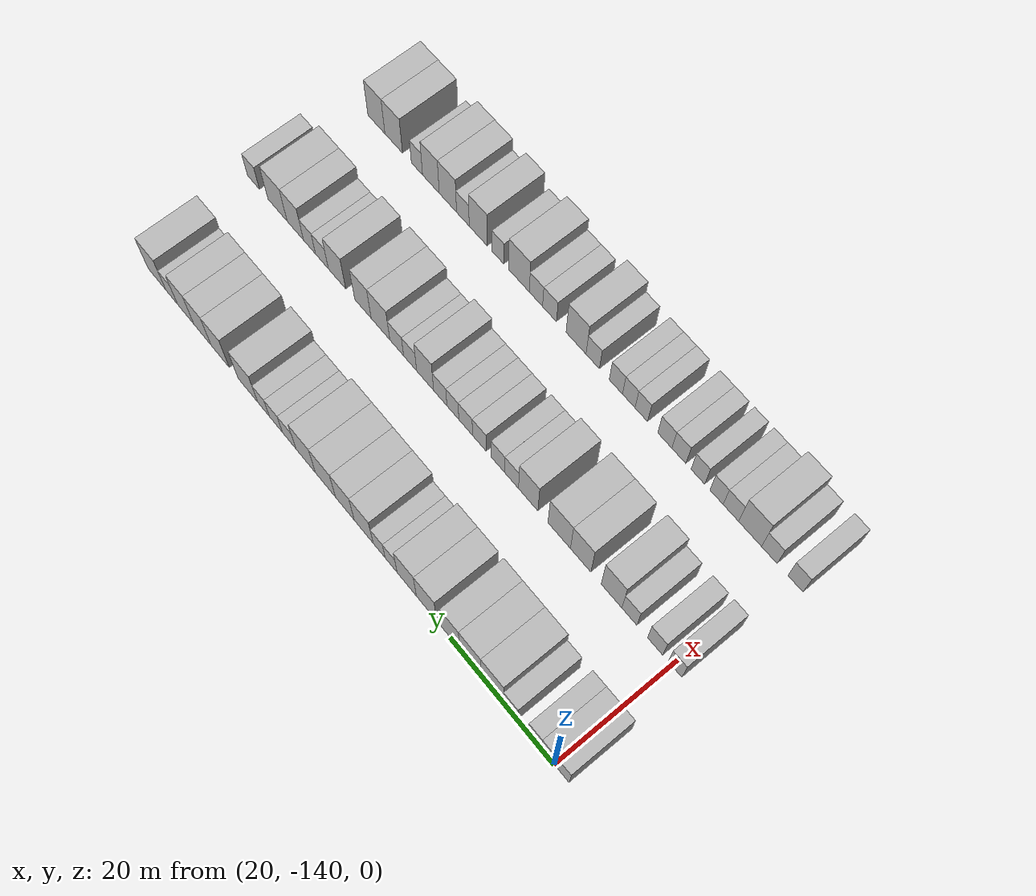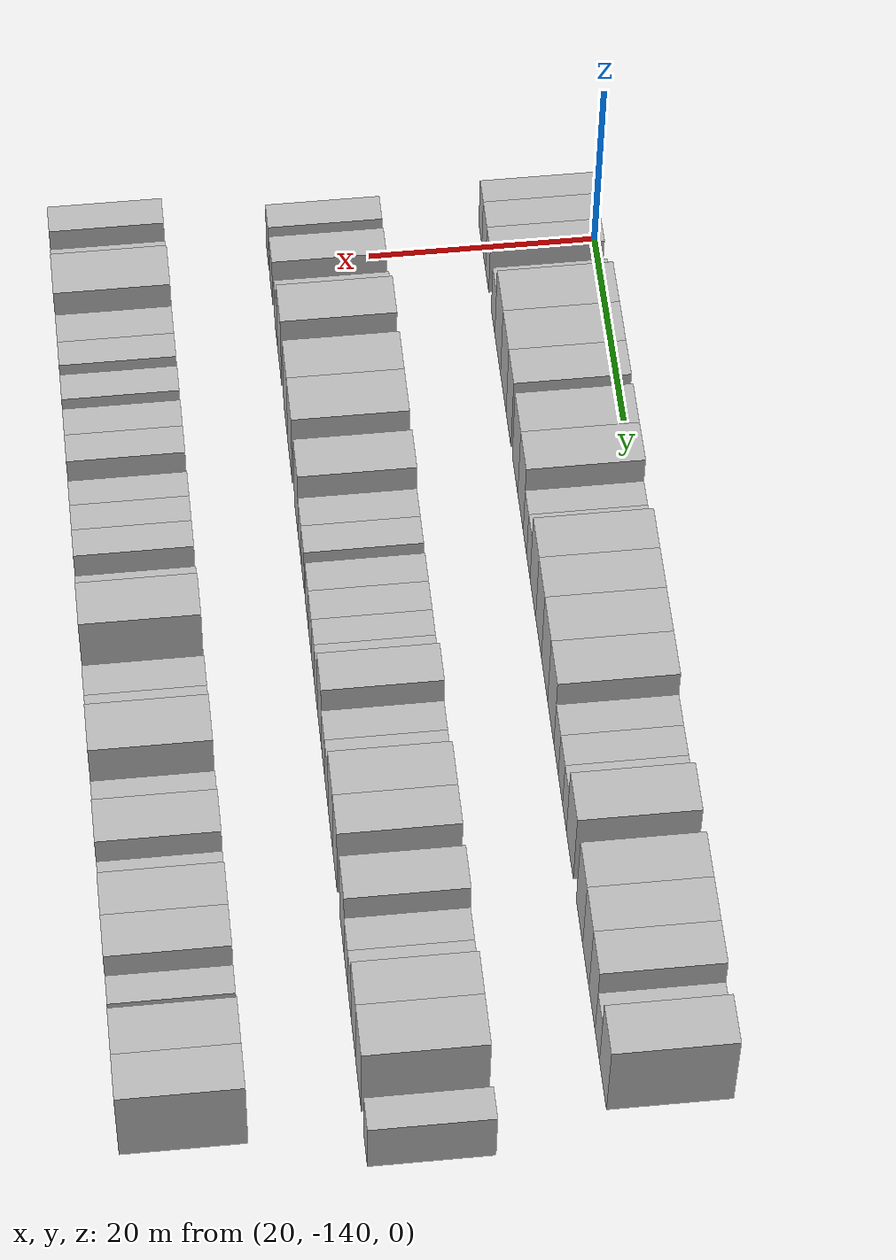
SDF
<sdf version="1.6">
 <world name="default">
  <model name="building_26">
   <static>1</static>
   <pose>25.0000 -141.5740 0 0.000000 0.000000 0.000000</pose>
   <link name="link">
    <pose>0 0 3.00 0 0 0</pose>
    <collision name="collision"><geometry><box><size>10.0000 2.4120 6.0000</size></box></geometry></collision>
    <visual name="visual">
     <cast_shadows>0</cast_shadows>
     <geometry><box><size>10.0000 2.4120 6.0000</size></box></geometry>
     <material>
      <script>
       <uri>model://HANNAS_wall/materials/scripts</uri>
       <uri>model://HANNAS_wall/materials/textures</uri>
       <name>vrc/HANNAS_wall</name>
      </script>
     </material>
    </visual>
   </link>
  </model>
  <model name="building_27">
   <static>1</static>
   <pose>25.0000 -138.9465 0 0.000000 0.000000 0.000000</pose>
   <link name="link">
    <pose>0 0 3.00 0 0 0</pose>
    <collision name="collision"><geometry><box><size>10.0000 2.8429 6.0000</size></box></geometry></collision>
    <visual name="visual">
     <cast_shadows>0</cast_shadows>
     <geometry><box><size>10.0000 2.8429 6.0000</size></box></geometry>
     <material>
      <script>
       <uri>model://HANNAS_wall/materials/scripts</uri>
       <uri>model://HANNAS_wall/materials/textures</uri>
       <name>vrc/HANNAS_wall</name>
      </script>
     </material>
    </visual>
   </link>
  </model>
  <model name="building_28">
   <static>1</static>
   <pose>25.0000 -136.2739 0 0.000000 0.000000 0.000000</pose>
   <link name="link">
    <pose>0 0 3.00 0 0 0</pose>
    <collision name="collision"><geometry><box><size>10.0000 2.5021 6.0000</size></box></geometry></collision>
    <visual name="visual">
     <cast_shadows>0</cast_shadows>
     <geometry><box><size>10.0000 2.5021 6.0000</size></box></geometry>
     <material>
      <script>
       <uri>model://HANNAS_wall/materials/scripts</uri>
       <uri>model://HANNAS_wall/materials/textures</uri>
       <name>vrc/HANNAS_wall</name>
      </script>
     </material>
    </visual>
   </link>
  </model>
  <model name="building_29">
   <static>1</static>
   <pose>25.0000 -131.6614 0 0.000000 0.000000 0.000000</pose>
   <link name="link">
    <pose>0 0 3.00 0 0 0</pose>
    <collision name="collision"><geometry><box><size>10.0000 2.7230 6.0000</size></box></geometry></collision>
    <visual name="visual">
     <cast_shadows>0</cast_shadows>
     <geometry><box><size>10.0000 2.7230 6.0000</size></box></geometry>
     <material>
      <script>
       <uri>model://HANNAS_wall/materials/scripts</uri>
       <uri>model://HANNAS_wall/materials/textures</uri>
       <name>vrc/HANNAS_wall</name>
      </script>
     </material>
    </visual>
   </link>
  </model>
  <model name="building_30">
   <static>1</static>
   <pose>25.0000 -128.1319 0 0.000000 0.000000 0.000000</pose>
   <link name="link">
    <pose>0 0 4.50 0 0 0</pose>
    <collision name="collision"><geometry><box><size>10.0000 4.3360 9.0000</size></box></geometry></collision>
    <visual name="visual">
     <cast_shadows>0</cast_shadows>
     <geometry><box><size>10.0000 4.3360 9.0000</size></box></geometry>
     <material>
      <script>
       <uri>model://HANNAS_wall/materials/scripts</uri>
       <uri>model://HANNAS_wall/materials/textures</uri>
       <name>vrc/HANNAS_wall</name>
      </script>
     </material>
    </visual>
   </link>
  </model>
  <model name="building_31">
   <static>1</static>
   <pose>25.0000 -123.8692 0 0.000000 0.000000 0.000000</pose>
   <link name="link">
    <pose>0 0 4.50 0 0 0</pose>
    <collision name="collision"><geometry><box><size>10.0000 4.1894 9.0000</size></box></geometry></collision>
    <visual name="visual">
     <cast_shadows>0</cast_shadows>
     <geometry><box><size>10.0000 4.1894 9.0000</size></box></geometry>
     <material>
      <script>
       <uri>model://HANNAS_wall/materials/scripts</uri>
       <uri>model://HANNAS_wall/materials/textures</uri>
       <name>vrc/HANNAS_wall</name>
      </script>
     </material>
    </visual>
   </link>
  </model>
  <model name="building_32">
   <static>1</static>
   <pose>25.0000 -119.9717 0 0.000000 0.000000 0.000000</pose>
   <link name="link">
    <pose>0 0 4.50 0 0 0</pose>
    <collision name="collision"><geometry><box><size>10.0000 3.6055 9.0000</size></box></geometry></collision>
    <visual name="visual">
     <cast_shadows>0</cast_shadows>
     <geometry><box><size>10.0000 3.6055 9.0000</size></box></geometry>
     <material>
      <script>
       <uri>model://HANNAS_wall/materials/scripts</uri>
       <uri>model://HANNAS_wall/materials/textures</uri>
       <name>vrc/HANNAS_wall</name>
      </script>
     </material>
    </visual>
   </link>
  </model>
  <model name="building_33">
   <static>1</static>
   <pose>25.0000 -115.1408 0 0.000000 0.000000 0.000000</pose>
   <link name="link">
    <pose>0 0 4.50 0 0 0</pose>
    <collision name="collision"><geometry><box><size>10.0000 4.0563 9.0000</size></box></geometry></collision>
    <visual name="visual">
     <cast_shadows>0</cast_shadows>
     <geometry><box><size>10.0000 4.0563 9.0000</size></box></geometry>
     <material>
      <script>
       <uri>model://HANNAS_wall/materials/scripts</uri>
       <uri>model://HANNAS_wall/materials/textures</uri>
       <name>vrc/HANNAS_wall</name>
      </script>
     </material>
    </visual>
   </link>
  </model>
  <model name="building_34">
   <static>1</static>
   <pose>25.0000 -111.1543 0 0.000000 0.000000 0.000000</pose>
   <link name="link">
    <pose>0 0 4.50 0 0 0</pose>
    <collision name="collision"><geometry><box><size>10.0000 3.9168 9.0000</size></box></geometry></collision>
    <visual name="visual">
     <cast_shadows>0</cast_shadows>
     <geometry><box><size>10.0000 3.9168 9.0000</size></box></geometry>
     <material>
      <script>
       <uri>model://HANNAS_wall/materials/scripts</uri>
       <uri>model://HANNAS_wall/materials/textures</uri>
       <name>vrc/HANNAS_wall</name>
      </script>
     </material>
    </visual>
   </link>
  </model>
  <model name="building_35">
   <static>1</static>
   <pose>25.0000 -107.9606 0 0.000000 0.000000 0.000000</pose>
   <link name="link">
    <pose>0 0 3.00 0 0 0</pose>
    <collision name="collision"><geometry><box><size>10.0000 2.4706 6.0000</size></box></geometry></collision>
    <visual name="visual">
     <cast_shadows>0</cast_shadows>
     <geometry><box><size>10.0000 2.4706 6.0000</size></box></geometry>
     <material>
      <script>
       <uri>model://HANNAS_wall/materials/scripts</uri>
       <uri>model://HANNAS_wall/materials/textures</uri>
       <name>vrc/HANNAS_wall</name>
      </script>
     </material>
    </visual>
   </link>
  </model>
  <model name="building_36">
   <static>1</static>
   <pose>25.0000 -105.4931 0 0.000000 0.000000 0.000000</pose>
   <link name="link">
    <pose>0 0 3.00 0 0 0</pose>
    <collision name="collision"><geometry><box><size>10.0000 2.4644 6.0000</size></box></geometry></collision>
    <visual name="visual">
     <cast_shadows>0</cast_shadows>
     <geometry><box><size>10.0000 2.4644 6.0000</size></box></geometry>
     <material>
      <script>
       <uri>model://HANNAS_wall/materials/scripts</uri>
       <uri>model://HANNAS_wall/materials/textures</uri>
       <name>vrc/HANNAS_wall</name>
      </script>
     </material>
    </visual>
   </link>
  </model>
  <model name="building_37">
   <static>1</static>
   <pose>25.0000 -102.2749 0 0.000000 0.000000 0.000000</pose>
   <link name="link">
    <pose>0 0 4.50 0 0 0</pose>
    <collision name="collision"><geometry><box><size>10.0000 3.9720 9.0000</size></box></geometry></collision>
    <visual name="visual">
     <cast_shadows>0</cast_shadows>
     <geometry><box><size>10.0000 3.9720 9.0000</size></box></geometry>
     <material>
      <script>
       <uri>model://HANNAS_wall/materials/scripts</uri>
       <uri>model://HANNAS_wall/materials/textures</uri>
       <name>vrc/HANNAS_wall</name>
      </script>
     </material>
    </visual>
   </link>
  </model>
  <model name="building_38">
   <static>1</static>
   <pose>25.0000 -98.3123 0 0.000000 0.000000 0.000000</pose>
   <link name="link">
    <pose>0 0 4.50 0 0 0</pose>
    <collision name="collision"><geometry><box><size>10.0000 3.9532 9.0000</size></box></geometry></collision>
    <visual name="visual">
     <cast_shadows>0</cast_shadows>
     <geometry><box><size>10.0000 3.9532 9.0000</size></box></geometry>
     <material>
      <script>
       <uri>model://HANNAS_wall/materials/scripts</uri>
       <uri>model://HANNAS_wall/materials/textures</uri>
       <name>vrc/HANNAS_wall</name>
      </script>
     </material>
    </visual>
   </link>
  </model>
  <model name="building_39">
   <static>1</static>
   <pose>25.0000 -94.1757 0 0.000000 0.000000 0.000000</pose>
   <link name="link">
    <pose>0 0 4.50 0 0 0</pose>
    <collision name="collision"><geometry><box><size>10.0000 4.3201 9.0000</size></box></geometry></collision>
    <visual name="visual">
     <cast_shadows>0</cast_shadows>
     <geometry><box><size>10.0000 4.3201 9.0000</size></box></geometry>
     <material>
      <script>
       <uri>model://HANNAS_wall/materials/scripts</uri>
       <uri>model://HANNAS_wall/materials/textures</uri>
       <name>vrc/HANNAS_wall</name>
      </script>
     </material>
    </visual>
   </link>
  </model>
  <model name="building_40">
   <static>1</static>
   <pose>25.0000 -89.9072 0 0.000000 0.000000 0.000000</pose>
   <link name="link">
    <pose>0 0 4.50 0 0 0</pose>
    <collision name="collision"><geometry><box><size>10.0000 4.2168 9.0000</size></box></geometry></collision>
    <visual name="visual">
     <cast_shadows>0</cast_shadows>
     <geometry><box><size>10.0000 4.2168 9.0000</size></box></geometry>
     <material>
      <script>
       <uri>model://HANNAS_wall/materials/scripts</uri>
       <uri>model://HANNAS_wall/materials/textures</uri>
       <name>vrc/HANNAS_wall</name>
      </script>
     </material>
    </visual>
   </link>
  </model>
  <model name="building_41">
   <static>1</static>
   <pose>25.0000 -86.3174 0 0.000000 0.000000 0.000000</pose>
   <link name="link">
    <pose>0 0 3.00 0 0 0</pose>
    <collision name="collision"><geometry><box><size>10.0000 2.9628 6.0000</size></box></geometry></collision>
    <visual name="visual">
     <cast_shadows>0</cast_shadows>
     <geometry><box><size>10.0000 2.9628 6.0000</size></box></geometry>
     <material>
      <script>
       <uri>model://HANNAS_wall/materials/scripts</uri>
       <uri>model://HANNAS_wall/materials/textures</uri>
       <name>vrc/HANNAS_wall</name>
      </script>
     </material>
    </visual>
   </link>
  </model>
  <model name="building_42">
   <static>1</static>
   <pose>25.0000 -83.4002 0 0.000000 0.000000 0.000000</pose>
   <link name="link">
    <pose>0 0 3.00 0 0 0</pose>
    <collision name="collision"><geometry><box><size>10.0000 2.8717 6.0000</size></box></geometry></collision>
    <visual name="visual">
     <cast_shadows>0</cast_shadows>
     <geometry><box><size>10.0000 2.8717 6.0000</size></box></geometry>
     <material>
      <script>
       <uri>model://HANNAS_wall/materials/scripts</uri>
       <uri>model://HANNAS_wall/materials/textures</uri>
       <name>vrc/HANNAS_wall</name>
      </script>
     </material>
    </visual>
   </link>
  </model>
  <model name="building_43">
   <static>1</static>
   <pose>25.0000 -80.6808 0 0.000000 0.000000 0.000000</pose>
   <link name="link">
    <pose>0 0 3.00 0 0 0</pose>
    <collision name="collision"><geometry><box><size>10.0000 2.5671 6.0000</size></box></geometry></collision>
    <visual name="visual">
     <cast_shadows>0</cast_shadows>
     <geometry><box><size>10.0000 2.5671 6.0000</size></box></geometry>
     <material>
      <script>
       <uri>model://HANNAS_wall/materials/scripts</uri>
       <uri>model://HANNAS_wall/materials/textures</uri>
       <name>vrc/HANNAS_wall</name>
      </script>
     </material>
    </visual>
   </link>
  </model>
  <model name="building_44">
   <static>1</static>
   <pose>25.0000 -77.1678 0 0.000000 0.000000 0.000000</pose>
   <link name="link">
    <pose>0 0 4.50 0 0 0</pose>
    <collision name="collision"><geometry><box><size>10.0000 4.4588 9.0000</size></box></geometry></collision>
    <visual name="visual">
     <cast_shadows>0</cast_shadows>
     <geometry><box><size>10.0000 4.4588 9.0000</size></box></geometry>
     <material>
      <script>
       <uri>model://HANNAS_wall/materials/scripts</uri>
       <uri>model://HANNAS_wall/materials/textures</uri>
       <name>vrc/HANNAS_wall</name>
      </script>
     </material>
    </visual>
   </link>
  </model>
  <model name="building_45">
   <static>1</static>
   <pose>25.0000 -70.8809 0 0.000000 0.000000 0.000000</pose>
   <link name="link">
    <pose>0 0 4.50 0 0 0</pose>
    <collision name="collision"><geometry><box><size>10.0000 4.1150 9.0000</size></box></geometry></collision>
    <visual name="visual">
     <cast_shadows>0</cast_shadows>
     <geometry><box><size>10.0000 4.1150 9.0000</size></box></geometry>
     <material>
      <script>
       <uri>model://HANNAS_wall/materials/scripts</uri>
       <uri>model://HANNAS_wall/materials/textures</uri>
       <name>vrc/HANNAS_wall</name>
      </script>
     </material>
    </visual>
   </link>
  </model>
  <model name="building_46">
   <static>1</static>
   <pose>25.0000 -66.8334 0 0.000000 0.000000 0.000000</pose>
   <link name="link">
    <pose>0 0 4.50 0 0 0</pose>
    <collision name="collision"><geometry><box><size>10.0000 3.9800 9.0000</size></box></geometry></collision>
    <visual name="visual">
     <cast_shadows>0</cast_shadows>
     <geometry><box><size>10.0000 3.9800 9.0000</size></box></geometry>
     <material>
      <script>
       <uri>model://HANNAS_wall/materials/scripts</uri>
       <uri>model://HANNAS_wall/materials/textures</uri>
       <name>vrc/HANNAS_wall</name>
      </script>
     </material>
    </visual>
   </link>
  </model>
  <model name="building_47">
   <static>1</static>
   <pose>25.0000 -62.9381 0 0.000000 0.000000 0.000000</pose>
   <link name="link">
    <pose>0 0 4.50 0 0 0</pose>
    <collision name="collision"><geometry><box><size>10.0000 3.8106 9.0000</size></box></geometry></collision>
    <visual name="visual">
     <cast_shadows>0</cast_shadows>
     <geometry><box><size>10.0000 3.8106 9.0000</size></box></geometry>
     <material>
      <script>
       <uri>model://HANNAS_wall/materials/scripts</uri>
       <uri>model://HANNAS_wall/materials/textures</uri>
       <name>vrc/HANNAS_wall</name>
      </script>
     </material>
    </visual>
   </link>
  </model>
  <model name="building_48">
   <static>1</static>
   <pose>25.0000 -59.6556 0 0.000000 0.000000 0.000000</pose>
   <link name="link">
    <pose>0 0 3.00 0 0 0</pose>
    <collision name="collision"><geometry><box><size>10.0000 2.7545 6.0000</size></box></geometry></collision>
    <visual name="visual">
     <cast_shadows>0</cast_shadows>
     <geometry><box><size>10.0000 2.7545 6.0000</size></box></geometry>
     <material>
      <script>
       <uri>model://HANNAS_wall/materials/scripts</uri>
       <uri>model://HANNAS_wall/materials/textures</uri>
       <name>vrc/HANNAS_wall</name>
      </script>
     </material>
    </visual>
   </link>
  </model>
  <model name="building_49">
   <static>1</static>
   <pose>25.0000 -56.1381 0 0.000000 0.000000 0.000000</pose>
   <link name="link">
    <pose>0 0 4.50 0 0 0</pose>
    <collision name="collision"><geometry><box><size>10.0000 4.2806 9.0000</size></box></geometry></collision>
    <visual name="visual">
     <cast_shadows>0</cast_shadows>
     <geometry><box><size>10.0000 4.2806 9.0000</size></box></geometry>
     <material>
      <script>
       <uri>model://HANNAS_wall/materials/scripts</uri>
       <uri>model://HANNAS_wall/materials/textures</uri>
       <name>vrc/HANNAS_wall</name>
      </script>
     </material>
    </visual>
   </link>
  </model>
  <model name="building_141">
   <static>1</static>
   <pose>44.0000 -140.6264 0 0.000000 0.000000 0.000000</pose>
   <link name="link">
    <pose>0 0 3.00 0 0 0</pose>
    <collision name="collision"><geometry><box><size>10.0000 2.5662 6.0000</size></box></geometry></collision>
    <visual name="visual">
     <cast_shadows>0</cast_shadows>
     <geometry><box><size>10.0000 2.5662 6.0000</size></box></geometry>
     <material>
      <script>
       <uri>model://HANNAS_wall/materials/scripts</uri>
       <uri>model://HANNAS_wall/materials/textures</uri>
       <name>vrc/HANNAS_wall</name>
      </script>
     </material>
    </visual>
   </link>
  </model>
  <model name="building_142">
   <static>1</static>
   <pose>44.0000 -136.9152 0 0.000000 0.000000 0.000000</pose>
   <link name="link">
    <pose>0 0 3.00 0 0 0</pose>
    <collision name="collision"><geometry><box><size>10.0000 2.8561 6.0000</size></box></geometry></collision>
    <visual name="visual">
     <cast_shadows>0</cast_shadows>
     <geometry><box><size>10.0000 2.8561 6.0000</size></box></geometry>
     <material>
      <script>
       <uri>model://HANNAS_wall/materials/scripts</uri>
       <uri>model://HANNAS_wall/materials/textures</uri>
       <name>vrc/HANNAS_wall</name>
      </script>
     </material>
    </visual>
   </link>
  </model>
  <model name="building_143">
   <static>1</static>
   <pose>44.0000 -132.0549 0 0.000000 0.000000 0.000000</pose>
   <link name="link">
    <pose>0 0 3.00 0 0 0</pose>
    <collision name="collision"><geometry><box><size>10.0000 2.8644 6.0000</size></box></geometry></collision>
    <visual name="visual">
     <cast_shadows>0</cast_shadows>
     <geometry><box><size>10.0000 2.8644 6.0000</size></box></geometry>
     <material>
      <script>
       <uri>model://HANNAS_wall/materials/scripts</uri>
       <uri>model://HANNAS_wall/materials/textures</uri>
       <name>vrc/HANNAS_wall</name>
      </script>
     </material>
    </visual>
   </link>
  </model>
  <model name="building_144">
   <static>1</static>
   <pose>44.0000 -128.6336 0 0.000000 0.000000 0.000000</pose>
   <link name="link">
    <pose>0 0 4.50 0 0 0</pose>
    <collision name="collision"><geometry><box><size>10.0000 3.9784 9.0000</size></box></geometry></collision>
    <visual name="visual">
     <cast_shadows>0</cast_shadows>
     <geometry><box><size>10.0000 3.9784 9.0000</size></box></geometry>
     <material>
      <script>
       <uri>model://HANNAS_wall/materials/scripts</uri>
       <uri>model://HANNAS_wall/materials/textures</uri>
       <name>vrc/HANNAS_wall</name>
      </script>
     </material>
    </visual>
   </link>
  </model>
  <model name="building_145">
   <static>1</static>
   <pose>44.0000 -122.6412 0 0.000000 0.000000 0.000000</pose>
   <link name="link">
    <pose>0 0 4.50 0 0 0</pose>
    <collision name="collision"><geometry><box><size>10.0000 4.0063 9.0000</size></box></geometry></collision>
    <visual name="visual">
     <cast_shadows>0</cast_shadows>
     <geometry><box><size>10.0000 4.0063 9.0000</size></box></geometry>
     <material>
      <script>
       <uri>model://HANNAS_wall/materials/scripts</uri>
       <uri>model://HANNAS_wall/materials/textures</uri>
       <name>vrc/HANNAS_wall</name>
      </script>
     </material>
    </visual>
   </link>
  </model>
  <model name="building_146">
   <static>1</static>
   <pose>44.0000 -118.4193 0 0.000000 0.000000 0.000000</pose>
   <link name="link">
    <pose>0 0 4.50 0 0 0</pose>
    <collision name="collision"><geometry><box><size>10.0000 4.4376 9.0000</size></box></geometry></collision>
    <visual name="visual">
     <cast_shadows>0</cast_shadows>
     <geometry><box><size>10.0000 4.4376 9.0000</size></box></geometry>
     <material>
      <script>
       <uri>model://HANNAS_wall/materials/scripts</uri>
       <uri>model://HANNAS_wall/materials/textures</uri>
       <name>vrc/HANNAS_wall</name>
      </script>
     </material>
    </visual>
   </link>
  </model>
  <model name="building_147">
   <static>1</static>
   <pose>44.0000 -112.2503 0 0.000000 0.000000 0.000000</pose>
   <link name="link">
    <pose>0 0 4.50 0 0 0</pose>
    <collision name="collision"><geometry><box><size>10.0000 3.9004 9.0000</size></box></geometry></collision>
    <visual name="visual">
     <cast_shadows>0</cast_shadows>
     <geometry><box><size>10.0000 3.9004 9.0000</size></box></geometry>
     <material>
      <script>
       <uri>model://HANNAS_wall/materials/scripts</uri>
       <uri>model://HANNAS_wall/materials/textures</uri>
       <name>vrc/HANNAS_wall</name>
      </script>
     </material>
    </visual>
   </link>
  </model>
  <model name="building_148">
   <static>1</static>
   <pose>44.0000 -108.8721 0 0.000000 0.000000 0.000000</pose>
   <link name="link">
    <pose>0 0 3.00 0 0 0</pose>
    <collision name="collision"><geometry><box><size>10.0000 2.8560 6.0000</size></box></geometry></collision>
    <visual name="visual">
     <cast_shadows>0</cast_shadows>
     <geometry><box><size>10.0000 2.8560 6.0000</size></box></geometry>
     <material>
      <script>
       <uri>model://HANNAS_wall/materials/scripts</uri>
       <uri>model://HANNAS_wall/materials/textures</uri>
       <name>vrc/HANNAS_wall</name>
      </script>
     </material>
    </visual>
   </link>
  </model>
  <model name="building_149">
   <static>1</static>
   <pose>44.0000 -106.0738 0 0.000000 0.000000 0.000000</pose>
   <link name="link">
    <pose>0 0 3.00 0 0 0</pose>
    <collision name="collision"><geometry><box><size>10.0000 2.7405 6.0000</size></box></geometry></collision>
    <visual name="visual">
     <cast_shadows>0</cast_shadows>
     <geometry><box><size>10.0000 2.7405 6.0000</size></box></geometry>
     <material>
      <script>
       <uri>model://HANNAS_wall/materials/scripts</uri>
       <uri>model://HANNAS_wall/materials/textures</uri>
       <name>vrc/HANNAS_wall</name>
      </script>
     </material>
    </visual>
   </link>
  </model>
  <model name="building_150">
   <static>1</static>
   <pose>44.0000 -102.2905 0 0.000000 0.000000 0.000000</pose>
   <link name="link">
    <pose>0 0 3.00 0 0 0</pose>
    <collision name="collision"><geometry><box><size>10.0000 2.8261 6.0000</size></box></geometry></collision>
    <visual name="visual">
     <cast_shadows>0</cast_shadows>
     <geometry><box><size>10.0000 2.8261 6.0000</size></box></geometry>
     <material>
      <script>
       <uri>model://HANNAS_wall/materials/scripts</uri>
       <uri>model://HANNAS_wall/materials/textures</uri>
       <name>vrc/HANNAS_wall</name>
      </script>
     </material>
    </visual>
   </link>
  </model>
  <model name="building_151">
   <static>1</static>
   <pose>44.0000 -99.4520 0 0.000000 0.000000 0.000000</pose>
   <link name="link">
    <pose>0 0 3.00 0 0 0</pose>
    <collision name="collision"><geometry><box><size>10.0000 2.8510 6.0000</size></box></geometry></collision>
    <visual name="visual">
     <cast_shadows>0</cast_shadows>
     <geometry><box><size>10.0000 2.8510 6.0000</size></box></geometry>
     <material>
      <script>
       <uri>model://HANNAS_wall/materials/scripts</uri>
       <uri>model://HANNAS_wall/materials/textures</uri>
       <name>vrc/HANNAS_wall</name>
      </script>
     </material>
    </visual>
   </link>
  </model>
  <model name="building_152">
   <static>1</static>
   <pose>44.0000 -96.7731 0 0.000000 0.000000 0.000000</pose>
   <link name="link">
    <pose>0 0 3.00 0 0 0</pose>
    <collision name="collision"><geometry><box><size>10.0000 2.5068 6.0000</size></box></geometry></collision>
    <visual name="visual">
     <cast_shadows>0</cast_shadows>
     <geometry><box><size>10.0000 2.5068 6.0000</size></box></geometry>
     <material>
      <script>
       <uri>model://HANNAS_wall/materials/scripts</uri>
       <uri>model://HANNAS_wall/materials/textures</uri>
       <name>vrc/HANNAS_wall</name>
      </script>
     </material>
    </visual>
   </link>
  </model>
  <model name="building_153">
   <static>1</static>
   <pose>44.0000 -94.1141 0 0.000000 0.000000 0.000000</pose>
   <link name="link">
    <pose>0 0 3.00 0 0 0</pose>
    <collision name="collision"><geometry><box><size>10.0000 2.8112 6.0000</size></box></geometry></collision>
    <visual name="visual">
     <cast_shadows>0</cast_shadows>
     <geometry><box><size>10.0000 2.8112 6.0000</size></box></geometry>
     <material>
      <script>
       <uri>model://HANNAS_wall/materials/scripts</uri>
       <uri>model://HANNAS_wall/materials/textures</uri>
       <name>vrc/HANNAS_wall</name>
      </script>
     </material>
    </visual>
   </link>
  </model>
  <model name="building_154">
   <static>1</static>
   <pose>44.0000 -90.8967 0 0.000000 0.000000 0.000000</pose>
   <link name="link">
    <pose>0 0 4.50 0 0 0</pose>
    <collision name="collision"><geometry><box><size>10.0000 3.6237 9.0000</size></box></geometry></collision>
    <visual name="visual">
     <cast_shadows>0</cast_shadows>
     <geometry><box><size>10.0000 3.6237 9.0000</size></box></geometry>
     <material>
      <script>
       <uri>model://HANNAS_wall/materials/scripts</uri>
       <uri>model://HANNAS_wall/materials/textures</uri>
       <name>vrc/HANNAS_wall</name>
      </script>
     </material>
    </visual>
   </link>
  </model>
  <model name="building_155">
   <static>1</static>
   <pose>44.0000 -87.6792 0 0.000000 0.000000 0.000000</pose>
   <link name="link">
    <pose>0 0 3.00 0 0 0</pose>
    <collision name="collision"><geometry><box><size>10.0000 2.8112 6.0000</size></box></geometry></collision>
    <visual name="visual">
     <cast_shadows>0</cast_shadows>
     <geometry><box><size>10.0000 2.8112 6.0000</size></box></geometry>
     <material>
      <script>
       <uri>model://HANNAS_wall/materials/scripts</uri>
       <uri>model://HANNAS_wall/materials/textures</uri>
       <name>vrc/HANNAS_wall</name>
      </script>
     </material>
    </visual>
   </link>
  </model>
  <model name="building_156">
   <static>1</static>
   <pose>44.0000 -84.7810 0 0.000000 0.000000 0.000000</pose>
   <link name="link">
    <pose>0 0 3.00 0 0 0</pose>
    <collision name="collision"><geometry><box><size>10.0000 2.9853 6.0000</size></box></geometry></collision>
    <visual name="visual">
     <cast_shadows>0</cast_shadows>
     <geometry><box><size>10.0000 2.9853 6.0000</size></box></geometry>
     <material>
      <script>
       <uri>model://HANNAS_wall/materials/scripts</uri>
       <uri>model://HANNAS_wall/materials/textures</uri>
       <name>vrc/HANNAS_wall</name>
      </script>
     </material>
    </visual>
   </link>
  </model>
  <model name="building_157">
   <static>1</static>
   <pose>44.0000 -81.2486 0 0.000000 0.000000 0.000000</pose>
   <link name="link">
    <pose>0 0 4.50 0 0 0</pose>
    <collision name="collision"><geometry><box><size>10.0000 4.0795 9.0000</size></box></geometry></collision>
    <visual name="visual">
     <cast_shadows>0</cast_shadows>
     <geometry><box><size>10.0000 4.0795 9.0000</size></box></geometry>
     <material>
      <script>
       <uri>model://HANNAS_wall/materials/scripts</uri>
       <uri>model://HANNAS_wall/materials/textures</uri>
       <name>vrc/HANNAS_wall</name>
      </script>
     </material>
    </visual>
   </link>
  </model>
  <model name="building_158">
   <static>1</static>
   <pose>44.0000 -77.3841 0 0.000000 0.000000 0.000000</pose>
   <link name="link">
    <pose>0 0 4.50 0 0 0</pose>
    <collision name="collision"><geometry><box><size>10.0000 3.6496 9.0000</size></box></geometry></collision>
    <visual name="visual">
     <cast_shadows>0</cast_shadows>
     <geometry><box><size>10.0000 3.6496 9.0000</size></box></geometry>
     <material>
      <script>
       <uri>model://HANNAS_wall/materials/scripts</uri>
       <uri>model://HANNAS_wall/materials/textures</uri>
       <name>vrc/HANNAS_wall</name>
      </script>
     </material>
    </visual>
   </link>
  </model>
  <model name="building_159">
   <static>1</static>
   <pose>44.0000 -71.6045 0 0.000000 0.000000 0.000000</pose>
   <link name="link">
    <pose>0 0 4.50 0 0 0</pose>
    <collision name="collision"><geometry><box><size>10.0000 3.9097 9.0000</size></box></geometry></collision>
    <visual name="visual">
     <cast_shadows>0</cast_shadows>
     <geometry><box><size>10.0000 3.9097 9.0000</size></box></geometry>
     <material>
      <script>
       <uri>model://HANNAS_wall/materials/scripts</uri>
       <uri>model://HANNAS_wall/materials/textures</uri>
       <name>vrc/HANNAS_wall</name>
      </script>
     </material>
    </visual>
   </link>
  </model>
  <model name="building_160">
   <static>1</static>
   <pose>44.0000 -68.1850 0 0.000000 0.000000 0.000000</pose>
   <link name="link">
    <pose>0 0 3.00 0 0 0</pose>
    <collision name="collision"><geometry><box><size>10.0000 2.9293 6.0000</size></box></geometry></collision>
    <visual name="visual">
     <cast_shadows>0</cast_shadows>
     <geometry><box><size>10.0000 2.9293 6.0000</size></box></geometry>
     <material>
      <script>
       <uri>model://HANNAS_wall/materials/scripts</uri>
       <uri>model://HANNAS_wall/materials/textures</uri>
       <name>vrc/HANNAS_wall</name>
      </script>
     </material>
    </visual>
   </link>
  </model>
  <model name="building_161">
   <static>1</static>
   <pose>44.0000 -65.3536 0 0.000000 0.000000 0.000000</pose>
   <link name="link">
    <pose>0 0 3.00 0 0 0</pose>
    <collision name="collision"><geometry><box><size>10.0000 2.7334 6.0000</size></box></geometry></collision>
    <visual name="visual">
     <cast_shadows>0</cast_shadows>
     <geometry><box><size>10.0000 2.7334 6.0000</size></box></geometry>
     <material>
      <script>
       <uri>model://HANNAS_wall/materials/scripts</uri>
       <uri>model://HANNAS_wall/materials/textures</uri>
       <name>vrc/HANNAS_wall</name>
      </script>
     </material>
    </visual>
   </link>
  </model>
  <model name="building_162">
   <static>1</static>
   <pose>44.0000 -62.0944 0 0.000000 0.000000 0.000000</pose>
   <link name="link">
    <pose>0 0 4.50 0 0 0</pose>
    <collision name="collision"><geometry><box><size>10.0000 3.7851 9.0000</size></box></geometry></collision>
    <visual name="visual">
     <cast_shadows>0</cast_shadows>
     <geometry><box><size>10.0000 3.7851 9.0000</size></box></geometry>
     <material>
      <script>
       <uri>model://HANNAS_wall/materials/scripts</uri>
       <uri>model://HANNAS_wall/materials/textures</uri>
       <name>vrc/HANNAS_wall</name>
      </script>
     </material>
    </visual>
   </link>
  </model>
  <model name="building_163">
   <static>1</static>
   <pose>44.0000 -57.9683 0 0.000000 0.000000 0.000000</pose>
   <link name="link">
    <pose>0 0 4.50 0 0 0</pose>
    <collision name="collision"><geometry><box><size>10.0000 4.4669 9.0000</size></box></geometry></collision>
    <visual name="visual">
     <cast_shadows>0</cast_shadows>
     <geometry><box><size>10.0000 4.4669 9.0000</size></box></geometry>
     <material>
      <script>
       <uri>model://HANNAS_wall/materials/scripts</uri>
       <uri>model://HANNAS_wall/materials/textures</uri>
       <name>vrc/HANNAS_wall</name>
      </script>
     </material>
    </visual>
   </link>
  </model>
  <model name="building_164">
   <static>1</static>
   <pose>44.0000 -52.3275 0 0.000000 0.000000 0.000000</pose>
   <link name="link">
    <pose>0 0 3.00 0 0 0</pose>
    <collision name="collision"><geometry><box><size>10.0000 2.8148 6.0000</size></box></geometry></collision>
    <visual name="visual">
     <cast_shadows>0</cast_shadows>
     <geometry><box><size>10.0000 2.8148 6.0000</size></box></geometry>
     <material>
      <script>
       <uri>model://HANNAS_wall/materials/scripts</uri>
       <uri>model://HANNAS_wall/materials/textures</uri>
       <name>vrc/HANNAS_wall</name>
      </script>
     </material>
    </visual>
   </link>
  </model>
  <model name="building_259">
   <static>1</static>
   <pose>63.0000 -142.1515 0 0.000000 0.000000 0.000000</pose>
   <link name="link">
    <pose>0 0 3.00 0 0 0</pose>
    <collision name="collision"><geometry><box><size>10.0000 2.7681 6.0000</size></box></geometry></collision>
    <visual name="visual">
     <cast_shadows>0</cast_shadows>
     <geometry><box><size>10.0000 2.7681 6.0000</size></box></geometry>
     <material>
      <script>
       <uri>model://HANNAS_wall/materials/scripts</uri>
       <uri>model://HANNAS_wall/materials/textures</uri>
       <name>vrc/HANNAS_wall</name>
      </script>
     </material>
    </visual>
   </link>
  </model>
  <model name="building_260">
   <static>1</static>
   <pose>63.0000 -137.3199 0 0.000000 0.000000 0.000000</pose>
   <link name="link">
    <pose>0 0 3.00 0 0 0</pose>
    <collision name="collision"><geometry><box><size>10.0000 2.8950 6.0000</size></box></geometry></collision>
    <visual name="visual">
     <cast_shadows>0</cast_shadows>
     <geometry><box><size>10.0000 2.8950 6.0000</size></box></geometry>
     <material>
      <script>
       <uri>model://HANNAS_wall/materials/scripts</uri>
       <uri>model://HANNAS_wall/materials/textures</uri>
       <name>vrc/HANNAS_wall</name>
      </script>
     </material>
    </visual>
   </link>
  </model>
  <model name="building_261">
   <static>1</static>
   <pose>63.0000 -133.7197 0 0.000000 0.000000 0.000000</pose>
   <link name="link">
    <pose>0 0 4.50 0 0 0</pose>
    <collision name="collision"><geometry><box><size>10.0000 4.3055 9.0000</size></box></geometry></collision>
    <visual name="visual">
     <cast_shadows>0</cast_shadows>
     <geometry><box><size>10.0000 4.3055 9.0000</size></box></geometry>
     <material>
      <script>
       <uri>model://HANNAS_wall/materials/scripts</uri>
       <uri>model://HANNAS_wall/materials/textures</uri>
       <name>vrc/HANNAS_wall</name>
      </script>
     </material>
    </visual>
   </link>
  </model>
  <model name="building_262">
   <static>1</static>
   <pose>63.0000 -130.0985 0 0.000000 0.000000 0.000000</pose>
   <link name="link">
    <pose>0 0 3.00 0 0 0</pose>
    <collision name="collision"><geometry><box><size>10.0000 2.9370 6.0000</size></box></geometry></collision>
    <visual name="visual">
     <cast_shadows>0</cast_shadows>
     <geometry><box><size>10.0000 2.9370 6.0000</size></box></geometry>
     <material>
      <script>
       <uri>model://HANNAS_wall/materials/scripts</uri>
       <uri>model://HANNAS_wall/materials/textures</uri>
       <name>vrc/HANNAS_wall</name>
      </script>
     </material>
    </visual>
   </link>
  </model>
  <model name="building_263">
   <static>1</static>
   <pose>63.0000 -127.3672 0 0.000000 0.000000 0.000000</pose>
   <link name="link">
    <pose>0 0 3.00 0 0 0</pose>
    <collision name="collision"><geometry><box><size>10.0000 2.5255 6.0000</size></box></geometry></collision>
    <visual name="visual">
     <cast_shadows>0</cast_shadows>
     <geometry><box><size>10.0000 2.5255 6.0000</size></box></geometry>
     <material>
      <script>
       <uri>model://HANNAS_wall/materials/scripts</uri>
       <uri>model://HANNAS_wall/materials/textures</uri>
       <name>vrc/HANNAS_wall</name>
      </script>
     </material>
    </visual>
   </link>
  </model>
  <model name="building_264">
   <static>1</static>
   <pose>63.0000 -123.7829 0 0.000000 0.000000 0.000000</pose>
   <link name="link">
    <pose>0 0 3.00 0 0 0</pose>
    <collision name="collision"><geometry><box><size>10.0000 2.6431 6.0000</size></box></geometry></collision>
    <visual name="visual">
     <cast_shadows>0</cast_shadows>
     <geometry><box><size>10.0000 2.6431 6.0000</size></box></geometry>
     <material>
      <script>
       <uri>model://HANNAS_wall/materials/scripts</uri>
       <uri>model://HANNAS_wall/materials/textures</uri>
       <name>vrc/HANNAS_wall</name>
      </script>
     </material>
    </visual>
   </link>
  </model>
  <model name="building_265">
   <static>1</static>
   <pose>63.0000 -120.0953 0 0.000000 0.000000 0.000000</pose>
   <link name="link">
    <pose>0 0 3.00 0 0 0</pose>
    <collision name="collision"><geometry><box><size>10.0000 2.7321 6.0000</size></box></geometry></collision>
    <visual name="visual">
     <cast_shadows>0</cast_shadows>
     <geometry><box><size>10.0000 2.7321 6.0000</size></box></geometry>
     <material>
      <script>
       <uri>model://HANNAS_wall/materials/scripts</uri>
       <uri>model://HANNAS_wall/materials/textures</uri>
       <name>vrc/HANNAS_wall</name>
      </script>
     </material>
    </visual>
   </link>
  </model>
  <model name="building_266">
   <static>1</static>
   <pose>63.0000 -117.3320 0 0.000000 0.000000 0.000000</pose>
   <link name="link">
    <pose>0 0 3.00 0 0 0</pose>
    <collision name="collision"><geometry><box><size>10.0000 2.7945 6.0000</size></box></geometry></collision>
    <visual name="visual">
     <cast_shadows>0</cast_shadows>
     <geometry><box><size>10.0000 2.7945 6.0000</size></box></geometry>
     <material>
      <script>
       <uri>model://HANNAS_wall/materials/scripts</uri>
       <uri>model://HANNAS_wall/materials/textures</uri>
       <name>vrc/HANNAS_wall</name>
      </script>
     </material>
    </visual>
   </link>
  </model>
  <model name="building_267">
   <static>1</static>
   <pose>63.0000 -112.6847 0 0.000000 0.000000 0.000000</pose>
   <link name="link">
    <pose>0 0 3.00 0 0 0</pose>
    <collision name="collision"><geometry><box><size>10.0000 2.5000 6.0000</size></box></geometry></collision>
    <visual name="visual">
     <cast_shadows>0</cast_shadows>
     <geometry><box><size>10.0000 2.5000 6.0000</size></box></geometry>
     <material>
      <script>
       <uri>model://HANNAS_wall/materials/scripts</uri>
       <uri>model://HANNAS_wall/materials/textures</uri>
       <name>vrc/HANNAS_wall</name>
      </script>
     </material>
    </visual>
   </link>
  </model>
  <model name="building_268">
   <static>1</static>
   <pose>63.0000 -110.1693 0 0.000000 0.000000 0.000000</pose>
   <link name="link">
    <pose>0 0 3.00 0 0 0</pose>
    <collision name="collision"><geometry><box><size>10.0000 2.5308 6.0000</size></box></geometry></collision>
    <visual name="visual">
     <cast_shadows>0</cast_shadows>
     <geometry><box><size>10.0000 2.5308 6.0000</size></box></geometry>
     <material>
      <script>
       <uri>model://HANNAS_wall/materials/scripts</uri>
       <uri>model://HANNAS_wall/materials/textures</uri>
       <name>vrc/HANNAS_wall</name>
      </script>
     </material>
    </visual>
   </link>
  </model>
  <model name="building_269">
   <static>1</static>
   <pose>63.0000 -107.5750 0 0.000000 0.000000 0.000000</pose>
   <link name="link">
    <pose>0 0 3.00 0 0 0</pose>
    <collision name="collision"><geometry><box><size>10.0000 2.6579 6.0000</size></box></geometry></collision>
    <visual name="visual">
     <cast_shadows>0</cast_shadows>
     <geometry><box><size>10.0000 2.6579 6.0000</size></box></geometry>
     <material>
      <script>
       <uri>model://HANNAS_wall/materials/scripts</uri>
       <uri>model://HANNAS_wall/materials/textures</uri>
       <name>vrc/HANNAS_wall</name>
      </script>
     </material>
    </visual>
   </link>
  </model>
  <model name="building_270">
   <static>1</static>
   <pose>63.0000 -102.8722 0 0.000000 0.000000 0.000000</pose>
   <link name="link">
    <pose>0 0 3.00 0 0 0</pose>
    <collision name="collision"><geometry><box><size>10.0000 2.7476 6.0000</size></box></geometry></collision>
    <visual name="visual">
     <cast_shadows>0</cast_shadows>
     <geometry><box><size>10.0000 2.7476 6.0000</size></box></geometry>
     <material>
      <script>
       <uri>model://HANNAS_wall/materials/scripts</uri>
       <uri>model://HANNAS_wall/materials/textures</uri>
       <name>vrc/HANNAS_wall</name>
      </script>
     </material>
    </visual>
   </link>
  </model>
  <model name="building_271">
   <static>1</static>
   <pose>63.0000 -99.4363 0 0.000000 0.000000 0.000000</pose>
   <link name="link">
    <pose>0 0 4.50 0 0 0</pose>
    <collision name="collision"><geometry><box><size>10.0000 4.1244 9.0000</size></box></geometry></collision>
    <visual name="visual">
     <cast_shadows>0</cast_shadows>
     <geometry><box><size>10.0000 4.1244 9.0000</size></box></geometry>
     <material>
      <script>
       <uri>model://HANNAS_wall/materials/scripts</uri>
       <uri>model://HANNAS_wall/materials/textures</uri>
       <name>vrc/HANNAS_wall</name>
      </script>
     </material>
    </visual>
   </link>
  </model>
  <model name="building_272">
   <static>1</static>
   <pose>63.0000 -93.9177 0 0.000000 0.000000 0.000000</pose>
   <link name="link">
    <pose>0 0 3.00 0 0 0</pose>
    <collision name="collision"><geometry><box><size>10.0000 2.9126 6.0000</size></box></geometry></collision>
    <visual name="visual">
     <cast_shadows>0</cast_shadows>
     <geometry><box><size>10.0000 2.9126 6.0000</size></box></geometry>
     <material>
      <script>
       <uri>model://HANNAS_wall/materials/scripts</uri>
       <uri>model://HANNAS_wall/materials/textures</uri>
       <name>vrc/HANNAS_wall</name>
      </script>
     </material>
    </visual>
   </link>
  </model>
  <model name="building_273">
   <static>1</static>
   <pose>63.0000 -91.0556 0 0.000000 0.000000 0.000000</pose>
   <link name="link">
    <pose>0 0 3.00 0 0 0</pose>
    <collision name="collision"><geometry><box><size>10.0000 2.8117 6.0000</size></box></geometry></collision>
    <visual name="visual">
     <cast_shadows>0</cast_shadows>
     <geometry><box><size>10.0000 2.8117 6.0000</size></box></geometry>
     <material>
      <script>
       <uri>model://HANNAS_wall/materials/scripts</uri>
       <uri>model://HANNAS_wall/materials/textures</uri>
       <name>vrc/HANNAS_wall</name>
      </script>
     </material>
    </visual>
   </link>
  </model>
  <model name="building_274">
   <static>1</static>
   <pose>63.0000 -87.4420 0 0.000000 0.000000 0.000000</pose>
   <link name="link">
    <pose>0 0 4.50 0 0 0</pose>
    <collision name="collision"><geometry><box><size>10.0000 4.4153 9.0000</size></box></geometry></collision>
    <visual name="visual">
     <cast_shadows>0</cast_shadows>
     <geometry><box><size>10.0000 4.4153 9.0000</size></box></geometry>
     <material>
      <script>
       <uri>model://HANNAS_wall/materials/scripts</uri>
       <uri>model://HANNAS_wall/materials/textures</uri>
       <name>vrc/HANNAS_wall</name>
      </script>
     </material>
    </visual>
   </link>
  </model>
  <model name="building_275">
   <static>1</static>
   <pose>63.0000 -82.9425 0 0.000000 0.000000 0.000000</pose>
   <link name="link">
    <pose>0 0 3.00 0 0 0</pose>
    <collision name="collision"><geometry><box><size>10.0000 2.5839 6.0000</size></box></geometry></collision>
    <visual name="visual">
     <cast_shadows>0</cast_shadows>
     <geometry><box><size>10.0000 2.5839 6.0000</size></box></geometry>
     <material>
      <script>
       <uri>model://HANNAS_wall/materials/scripts</uri>
       <uri>model://HANNAS_wall/materials/textures</uri>
       <name>vrc/HANNAS_wall</name>
      </script>
     </material>
    </visual>
   </link>
  </model>
  <model name="building_276">
   <static>1</static>
   <pose>63.0000 -78.6804 0 0.000000 0.000000 0.000000</pose>
   <link name="link">
    <pose>0 0 4.50 0 0 0</pose>
    <collision name="collision"><geometry><box><size>10.0000 3.9403 9.0000</size></box></geometry></collision>
    <visual name="visual">
     <cast_shadows>0</cast_shadows>
     <geometry><box><size>10.0000 3.9403 9.0000</size></box></geometry>
     <material>
      <script>
       <uri>model://HANNAS_wall/materials/scripts</uri>
       <uri>model://HANNAS_wall/materials/textures</uri>
       <name>vrc/HANNAS_wall</name>
      </script>
     </material>
    </visual>
   </link>
  </model>
  <model name="building_277">
   <static>1</static>
   <pose>63.0000 -75.3160 0 0.000000 0.000000 0.000000</pose>
   <link name="link">
    <pose>0 0 3.00 0 0 0</pose>
    <collision name="collision"><geometry><box><size>10.0000 2.7885 6.0000</size></box></geometry></collision>
    <visual name="visual">
     <cast_shadows>0</cast_shadows>
     <geometry><box><size>10.0000 2.7885 6.0000</size></box></geometry>
     <material>
      <script>
       <uri>model://HANNAS_wall/materials/scripts</uri>
       <uri>model://HANNAS_wall/materials/textures</uri>
       <name>vrc/HANNAS_wall</name>
      </script>
     </material>
    </visual>
   </link>
  </model>
  <model name="building_278">
   <static>1</static>
   <pose>63.0000 -72.0026 0 0.000000 0.000000 0.000000</pose>
   <link name="link">
    <pose>0 0 4.50 0 0 0</pose>
    <collision name="collision"><geometry><box><size>10.0000 3.8384 9.0000</size></box></geometry></collision>
    <visual name="visual">
     <cast_shadows>0</cast_shadows>
     <geometry><box><size>10.0000 3.8384 9.0000</size></box></geometry>
     <material>
      <script>
       <uri>model://HANNAS_wall/materials/scripts</uri>
       <uri>model://HANNAS_wall/materials/textures</uri>
       <name>vrc/HANNAS_wall</name>
      </script>
     </material>
    </visual>
   </link>
  </model>
  <model name="building_279">
   <static>1</static>
   <pose>63.0000 -68.2077 0 0.000000 0.000000 0.000000</pose>
   <link name="link">
    <pose>0 0 4.50 0 0 0</pose>
    <collision name="collision"><geometry><box><size>10.0000 3.7513 9.0000</size></box></geometry></collision>
    <visual name="visual">
     <cast_shadows>0</cast_shadows>
     <geometry><box><size>10.0000 3.7513 9.0000</size></box></geometry>
     <material>
      <script>
       <uri>model://HANNAS_wall/materials/scripts</uri>
       <uri>model://HANNAS_wall/materials/textures</uri>
       <name>vrc/HANNAS_wall</name>
      </script>
     </material>
    </visual>
   </link>
  </model>
  <model name="building_280">
   <static>1</static>
   <pose>63.0000 -65.0676 0 0.000000 0.000000 0.000000</pose>
   <link name="link">
    <pose>0 0 3.00 0 0 0</pose>
    <collision name="collision"><geometry><box><size>10.0000 2.5289 6.0000</size></box></geometry></collision>
    <visual name="visual">
     <cast_shadows>0</cast_shadows>
     <geometry><box><size>10.0000 2.5289 6.0000</size></box></geometry>
     <material>
      <script>
       <uri>model://HANNAS_wall/materials/scripts</uri>
       <uri>model://HANNAS_wall/materials/textures</uri>
       <name>vrc/HANNAS_wall</name>
      </script>
     </material>
    </visual>
   </link>
  </model>
  <model name="building_281">
   <static>1</static>
   <pose>63.0000 -59.7835 0 0.000000 0.000000 0.000000</pose>
   <link name="link">
    <pose>0 0 4.50 0 0 0</pose>
    <collision name="collision"><geometry><box><size>10.0000 4.0393 9.0000</size></box></geometry></collision>
    <visual name="visual">
     <cast_shadows>0</cast_shadows>
     <geometry><box><size>10.0000 4.0393 9.0000</size></box></geometry>
     <material>
      <script>
       <uri>model://HANNAS_wall/materials/scripts</uri>
       <uri>model://HANNAS_wall/materials/textures</uri>
       <name>vrc/HANNAS_wall</name>
      </script>
     </material>
    </visual>
   </link>
  </model>
  <model name="building_282">
   <static>1</static>
   <pose>63.0000 -55.7984 0 0.000000 0.000000 0.000000</pose>
   <link name="link">
    <pose>0 0 4.50 0 0 0</pose>
    <collision name="collision"><geometry><box><size>10.0000 3.9308 9.0000</size></box></geometry></collision>
    <visual name="visual">
     <cast_shadows>0</cast_shadows>
     <geometry><box><size>10.0000 3.9308 9.0000</size></box></geometry>
     <material>
      <script>
       <uri>model://HANNAS_wall/materials/scripts</uri>
       <uri>model://HANNAS_wall/materials/textures</uri>
       <name>vrc/HANNAS_wall</name>
      </script>
     </material>
    </visual>
   </link>
  </model>
 </world>
</sdf>
